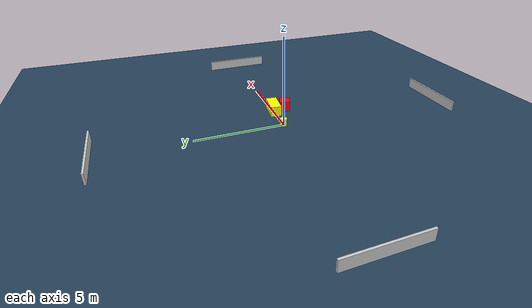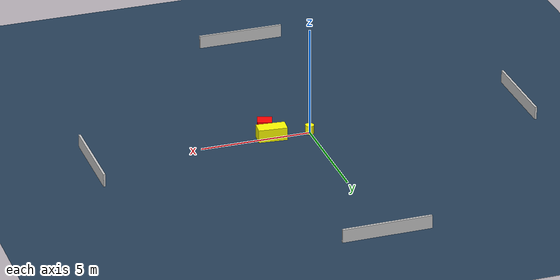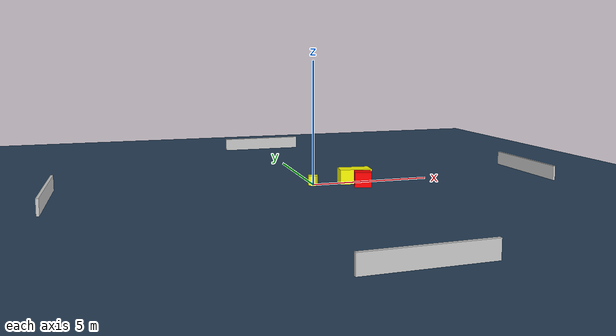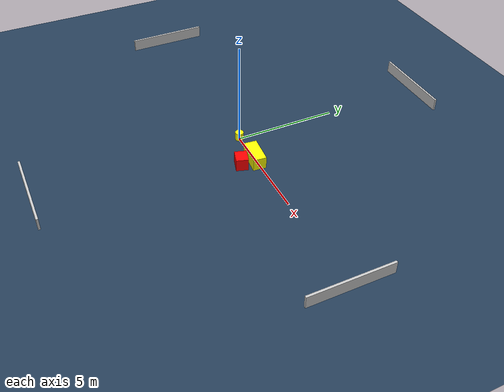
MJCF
<?xml version="1.0" ?>
<mujoco model="generated_environment">
  <option timestep="0.01" integrator="RK4" cone="elliptic"/>
  <default>
    <geom density="1"/>
  </default>
  <asset>
    <texture builtin="gradient" height="3072" name="skybox" rgb1="0.3 0.5 0.7" rgb2="0 0 0" type="skybox" width="512"/>
    <texture builtin="checker" height="300" name="groundplane" rgb1="0.2 0.3 0.4" rgb2="0.1 0.2 0.3" type="2d" width="300"/>
    <material name="groundplane" reflectance="0.2" texrepeat="5 5" texture="groundplane"/>
  </asset>
  <worldbody>
    <light dir="0 0 -1" directional="true" pos="0 0 1.5"/>
    <geom condim="3" friction="0.5 0.005 0.001" material="groundplane" name="floor" pos="0 0 0" size="0 0 0.05" type="plane"/>
    <body name="walls">
      <geom name="wall_1" condim="4" pos="-10.0 0.0 0.3" rgba="0.800000011920929 0.800000011920929 0.800000011920929 1.0" size="0.05 2.0 0.3" type="box"/>
      <geom name="wall_2" condim="4" pos="10.0 0.0 0.3" rgba="0.800000011920929 0.800000011920929 0.800000011920929 1.0" size="0.05 2.0 0.3" type="box"/>
      <geom name="wall_3" condim="4" pos="0.0 -10.0 0.3" rgba="0.800000011920929 0.800000011920929 0.800000011920929 1.0" size="2.0 0.05 0.3" type="box"/>
      <geom name="wall_4" condim="4" pos="0.0 10.0 0.3" rgba="0.800000011920929 0.800000011920929 0.800000011920929 1.0" size="2.0 0.05 0.3" type="box"/>
    </body>
    <body name="robot">
      <joint name="joint_x" type="slide" pos="0 0 0" axis="1 0 0"/>
      <joint name="joint_y" type="slide" pos="0 0 0" axis="0 1 0"/>
      <geom name="robot" type="cylinder" pos="0.0 0.0 0.2" size="0.2 0.2 0.0" mass="5.0" friction="1.0 0.005 0.0001" condim="4" rgba="1.0 1.0 0.0 1.0"/>
    </body>
    <body name="obstacle_1_movable">
      <geom name="obstacle_1_movable" condim="4" pos="1.762134013670003 -0.03250305603322366 0.3" euler="0 0 174.78124810653557" friction="0.0 0.005 0.001" rgba="1.0 1.0 0.0 1.0" size="0.6567107444125326 0.3150782641760656 0.3" type="box" mass="0.1"/>
      <joint type="free"/>
    </body>
    <body name="obstacle_2_static">
      <geom name="obstacle_2_static" condim="4" pos="1.8486343390602373 -0.7533019864483597 0.3" euler="0 0 73.09980707572133" friction="0.0 0.005 0.001" rgba="1.0 0.0 0.0 1.0" size="0.2887763187151961 0.3314408855879077 0.3" type="box"/>
    </body>
  </worldbody>
  <actuator>
    <motor name="actuator_x" joint="joint_x" gear="1" ctrlrange="-1 1"/>
    <motor name="actuator_y" joint="joint_y" gear="1" ctrlrange="-1 1"/>
  </actuator>
</mujoco>
